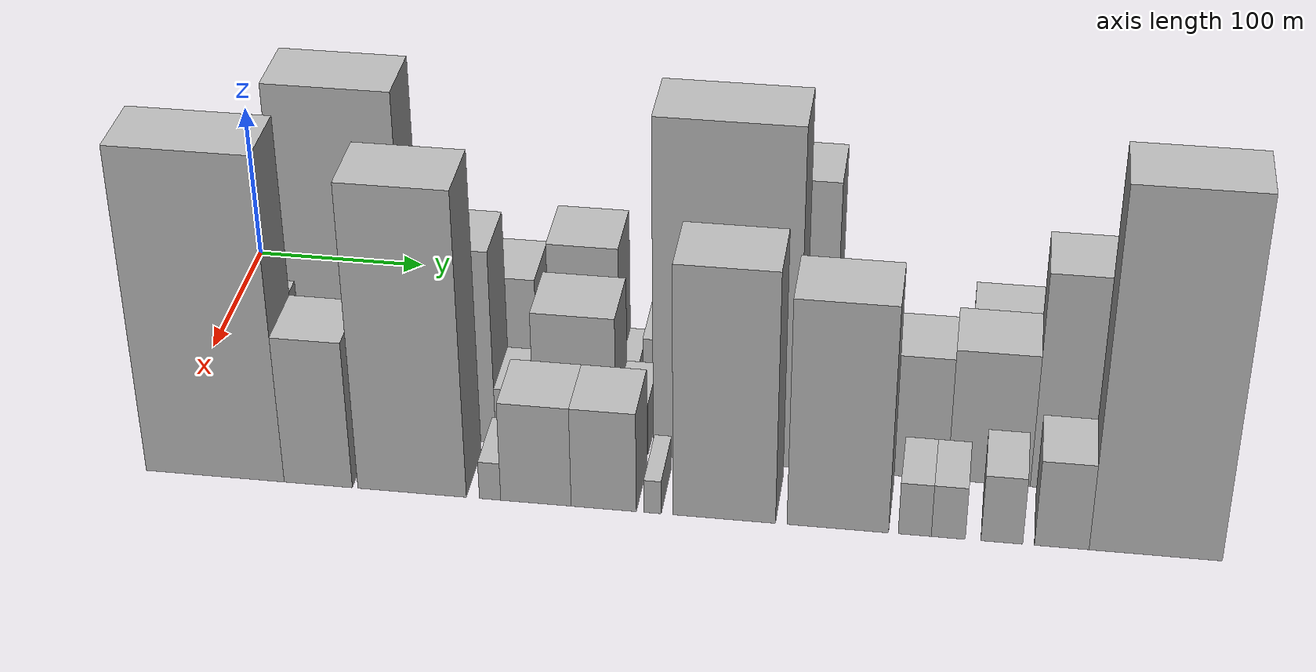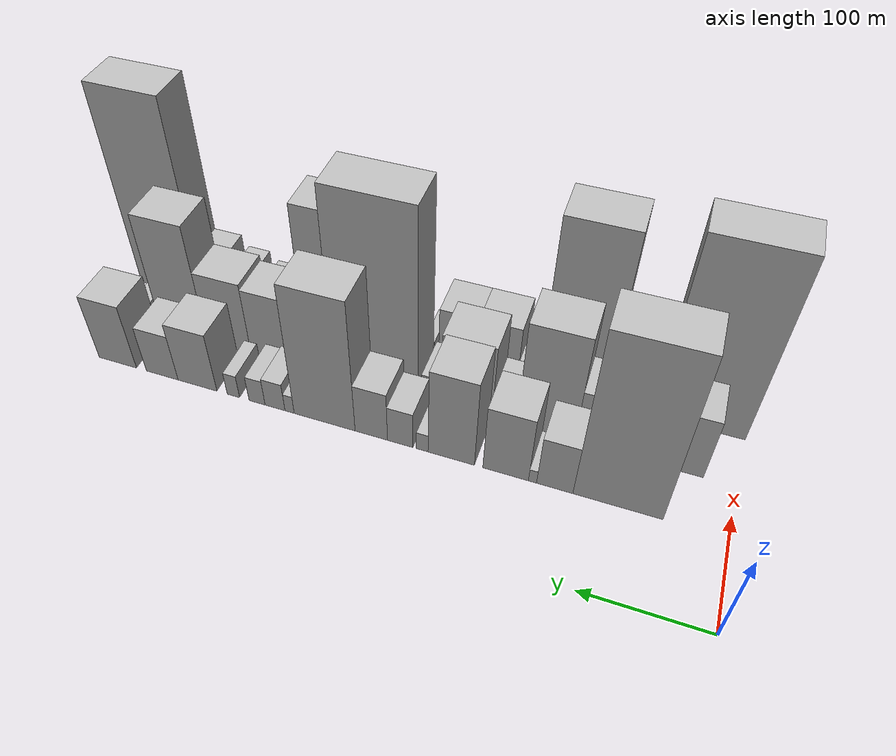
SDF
<sdf version="1.6">
 <world name="default">
  <model name="building_16">
   <static>1</static>
   <pose>100.0000 84.3406 0 0.000000 0.000000 0.000000</pose>
   <link name="link">
    <pose>0 0 93.00 0 0 0</pose>
    <collision name="collision"><geometry><box><size>40.0000 70.0272 186.0000</size></box></geometry></collision>
    <visual name="visual">
     <cast_shadows>0</cast_shadows>
     <geometry><box><size>40.0000 70.0272 186.0000</size></box></geometry>
     <material>
      <script>
       <uri>model://HANNAS_wall/materials/scripts</uri>
       <uri>model://HANNAS_wall/materials/textures</uri>
       <name>vrc/HANNAS_wall</name>
      </script>
     </material>
    </visual>
   </link>
  </model>
  <model name="building_17">
   <static>1</static>
   <pose>100.0000 133.8959 0 0.000000 0.000000 0.000000</pose>
   <link name="link">
    <pose>0 0 28.50 0 0 0</pose>
    <collision name="collision"><geometry><box><size>40.0000 29.0835 57.0000</size></box></geometry></collision>
    <visual name="visual">
     <cast_shadows>0</cast_shadows>
     <geometry><box><size>40.0000 29.0835 57.0000</size></box></geometry>
     <material>
      <script>
       <uri>model://HANNAS_wall/materials/scripts</uri>
       <uri>model://HANNAS_wall/materials/textures</uri>
       <name>vrc/HANNAS_wall</name>
      </script>
     </material>
    </visual>
   </link>
  </model>
  <model name="building_18">
   <static>1</static>
   <pose>100.0000 151.7411 0 0.000000 0.000000 0.000000</pose>
   <link name="link">
    <pose>0 0 7.50 0 0 0</pose>
    <collision name="collision"><geometry><box><size>40.0000 6.6067 15.0000</size></box></geometry></collision>
    <visual name="visual">
     <cast_shadows>0</cast_shadows>
     <geometry><box><size>40.0000 6.6067 15.0000</size></box></geometry>
     <material>
      <script>
       <uri>model://HANNAS_wall/materials/scripts</uri>
       <uri>model://HANNAS_wall/materials/textures</uri>
       <name>vrc/HANNAS_wall</name>
      </script>
     </material>
    </visual>
   </link>
  </model>
  <model name="building_19">
   <static>1</static>
   <pose>100.0000 173.7985 0 0.000000 0.000000 0.000000</pose>
   <link name="link">
    <pose>0 0 37.50 0 0 0</pose>
    <collision name="collision"><geometry><box><size>40.0000 37.5081 75.0000</size></box></geometry></collision>
    <visual name="visual">
     <cast_shadows>0</cast_shadows>
     <geometry><box><size>40.0000 37.5081 75.0000</size></box></geometry>
     <material>
      <script>
       <uri>model://HANNAS_wall/materials/scripts</uri>
       <uri>model://HANNAS_wall/materials/textures</uri>
       <name>vrc/HANNAS_wall</name>
      </script>
     </material>
    </visual>
   </link>
  </model>
  <model name="building_20">
   <static>1</static>
   <pose>100.0000 219.1859 0 0.000000 0.000000 0.000000</pose>
   <link name="link">
    <pose>0 0 49.50 0 0 0</pose>
    <collision name="collision"><geometry><box><size>40.0000 39.2666 99.0000</size></box></geometry></collision>
    <visual name="visual">
     <cast_shadows>0</cast_shadows>
     <geometry><box><size>40.0000 39.2666 99.0000</size></box></geometry>
     <material>
      <script>
       <uri>model://HANNAS_wall/materials/scripts</uri>
       <uri>model://HANNAS_wall/materials/textures</uri>
       <name>vrc/HANNAS_wall</name>
      </script>
     </material>
    </visual>
   </link>
  </model>
  <model name="building_21">
   <static>1</static>
   <pose>100.0000 243.8342 0 0.000000 0.000000 0.000000</pose>
   <link name="link">
    <pose>0 0 10.50 0 0 0</pose>
    <collision name="collision"><geometry><box><size>40.0000 10.0301 21.0000</size></box></geometry></collision>
    <visual name="visual">
     <cast_shadows>0</cast_shadows>
     <geometry><box><size>40.0000 10.0301 21.0000</size></box></geometry>
     <material>
      <script>
       <uri>model://HANNAS_wall/materials/scripts</uri>
       <uri>model://HANNAS_wall/materials/textures</uri>
       <name>vrc/HANNAS_wall</name>
      </script>
     </material>
    </visual>
   </link>
  </model>
  <model name="building_22">
   <static>1</static>
   <pose>100.0000 262.9086 0 0.000000 0.000000 0.000000</pose>
   <link name="link">
    <pose>0 0 21.00 0 0 0</pose>
    <collision name="collision"><geometry><box><size>40.0000 22.1185 42.0000</size></box></geometry></collision>
    <visual name="visual">
     <cast_shadows>0</cast_shadows>
     <geometry><box><size>40.0000 22.1185 42.0000</size></box></geometry>
     <material>
      <script>
       <uri>model://HANNAS_wall/materials/scripts</uri>
       <uri>model://HANNAS_wall/materials/textures</uri>
       <name>vrc/HANNAS_wall</name>
      </script>
     </material>
    </visual>
   </link>
  </model>
  <model name="building_23">
   <static>1</static>
   <pose>100.0000 288.2945 0 0.000000 0.000000 0.000000</pose>
   <link name="link">
    <pose>0 0 28.50 0 0 0</pose>
    <collision name="collision"><geometry><box><size>40.0000 28.6533 57.0000</size></box></geometry></collision>
    <visual name="visual">
     <cast_shadows>0</cast_shadows>
     <geometry><box><size>40.0000 28.6533 57.0000</size></box></geometry>
     <material>
      <script>
       <uri>model://HANNAS_wall/materials/scripts</uri>
       <uri>model://HANNAS_wall/materials/textures</uri>
       <name>vrc/HANNAS_wall</name>
      </script>
     </material>
    </visual>
   </link>
  </model>
  <model name="building_24">
   <static>1</static>
   <pose>100.0000 330.2914 0 0.000000 0.000000 0.000000</pose>
   <link name="link">
    <pose>0 0 75.00 0 0 0</pose>
    <collision name="collision"><geometry><box><size>40.0000 55.3407 150.0000</size></box></geometry></collision>
    <visual name="visual">
     <cast_shadows>0</cast_shadows>
     <geometry><box><size>40.0000 55.3407 150.0000</size></box></geometry>
     <material>
      <script>
       <uri>model://HANNAS_wall/materials/scripts</uri>
       <uri>model://HANNAS_wall/materials/textures</uri>
       <name>vrc/HANNAS_wall</name>
      </script>
     </material>
    </visual>
   </link>
  </model>
  <model name="building_25">
   <static>1</static>
   <pose>100.0000 362.2287 0 0.000000 0.000000 0.000000</pose>
   <link name="link">
    <pose>0 0 10.50 0 0 0</pose>
    <collision name="collision"><geometry><box><size>40.0000 8.5337 21.0000</size></box></geometry></collision>
    <visual name="visual">
     <cast_shadows>0</cast_shadows>
     <geometry><box><size>40.0000 8.5337 21.0000</size></box></geometry>
     <material>
      <script>
       <uri>model://HANNAS_wall/materials/scripts</uri>
       <uri>model://HANNAS_wall/materials/textures</uri>
       <name>vrc/HANNAS_wall</name>
      </script>
     </material>
    </visual>
   </link>
  </model>
  <model name="building_26">
   <static>1</static>
   <pose>100.0000 375.7533 0 0.000000 0.000000 0.000000</pose>
   <link name="link">
    <pose>0 0 16.50 0 0 0</pose>
    <collision name="collision"><geometry><box><size>40.0000 18.5155 33.0000</size></box></geometry></collision>
    <visual name="visual">
     <cast_shadows>0</cast_shadows>
     <geometry><box><size>40.0000 18.5155 33.0000</size></box></geometry>
     <material>
      <script>
       <uri>model://HANNAS_wall/materials/scripts</uri>
       <uri>model://HANNAS_wall/materials/textures</uri>
       <name>vrc/HANNAS_wall</name>
      </script>
     </material>
    </visual>
   </link>
  </model>
  <model name="building_27">
   <static>1</static>
   <pose>100.0000 392.5887 0 0.000000 0.000000 0.000000</pose>
   <link name="link">
    <pose>0 0 15.00 0 0 0</pose>
    <collision name="collision"><geometry><box><size>40.0000 15.1554 30.0000</size></box></geometry></collision>
    <visual name="visual">
     <cast_shadows>0</cast_shadows>
     <geometry><box><size>40.0000 15.1554 30.0000</size></box></geometry>
     <material>
      <script>
       <uri>model://HANNAS_wall/materials/scripts</uri>
       <uri>model://HANNAS_wall/materials/textures</uri>
       <name>vrc/HANNAS_wall</name>
      </script>
     </material>
    </visual>
   </link>
  </model>
  <model name="building_28">
   <static>1</static>
   <pose>100.0000 415.0585 0 0.000000 0.000000 0.000000</pose>
   <link name="link">
    <pose>0 0 13.50 0 0 0</pose>
    <collision name="collision"><geometry><box><size>40.0000 11.7842 27.0000</size></box></geometry></collision>
    <visual name="visual">
     <cast_shadows>0</cast_shadows>
     <geometry><box><size>40.0000 11.7842 27.0000</size></box></geometry>
     <material>
      <script>
       <uri>model://HANNAS_wall/materials/scripts</uri>
       <uri>model://HANNAS_wall/materials/textures</uri>
       <name>vrc/HANNAS_wall</name>
      </script>
     </material>
    </visual>
   </link>
  </model>
  <model name="building_29">
   <static>1</static>
   <pose>100.0000 449.8755 0 0.000000 0.000000 0.000000</pose>
   <link name="link">
    <pose>0 0 34.50 0 0 0</pose>
    <collision name="collision"><geometry><box><size>40.0000 37.8498 69.0000</size></box></geometry></collision>
    <visual name="visual">
     <cast_shadows>0</cast_shadows>
     <geometry><box><size>40.0000 37.8498 69.0000</size></box></geometry>
     <material>
      <script>
       <uri>model://HANNAS_wall/materials/scripts</uri>
       <uri>model://HANNAS_wall/materials/textures</uri>
       <name>vrc/HANNAS_wall</name>
      </script>
     </material>
    </visual>
   </link>
  </model>
  <model name="building_30">
   <static>1</static>
   <pose>100.0000 484.6062 0 0.000000 0.000000 0.000000</pose>
   <link name="link">
    <pose>0 0 27.00 0 0 0</pose>
    <collision name="collision"><geometry><box><size>40.0000 31.6116 54.0000</size></box></geometry></collision>
    <visual name="visual">
     <cast_shadows>0</cast_shadows>
     <geometry><box><size>40.0000 31.6116 54.0000</size></box></geometry>
     <material>
      <script>
       <uri>model://HANNAS_wall/materials/scripts</uri>
       <uri>model://HANNAS_wall/materials/textures</uri>
       <name>vrc/HANNAS_wall</name>
      </script>
     </material>
    </visual>
   </link>
  </model>
  <model name="building_31">
   <static>1</static>
   <pose>100.0000 529.4154 0 0.000000 0.000000 0.000000</pose>
   <link name="link">
    <pose>0 0 37.50 0 0 0</pose>
    <collision name="collision"><geometry><box><size>40.0000 38.0069 75.0000</size></box></geometry></collision>
    <visual name="visual">
     <cast_shadows>0</cast_shadows>
     <geometry><box><size>40.0000 38.0069 75.0000</size></box></geometry>
     <material>
      <script>
       <uri>model://HANNAS_wall/materials/scripts</uri>
       <uri>model://HANNAS_wall/materials/textures</uri>
       <name>vrc/HANNAS_wall</name>
      </script>
     </material>
    </visual>
   </link>
  </model>
  <model name="building_47">
   <static>1</static>
   <pose>149.0000 43.0082 0 0.000000 0.000000 0.000000</pose>
   <link name="link">
    <pose>0 0 34.50 0 0 0</pose>
    <collision name="collision"><geometry><box><size>40.0000 35.7730 69.0000</size></box></geometry></collision>
    <visual name="visual">
     <cast_shadows>0</cast_shadows>
     <geometry><box><size>40.0000 35.7730 69.0000</size></box></geometry>
     <material>
      <script>
       <uri>model://HANNAS_wall/materials/scripts</uri>
       <uri>model://HANNAS_wall/materials/textures</uri>
       <name>vrc/HANNAS_wall</name>
      </script>
     </material>
    </visual>
   </link>
  </model>
  <model name="building_48">
   <static>1</static>
   <pose>149.0000 79.2917 0 0.000000 0.000000 0.000000</pose>
   <link name="link">
    <pose>0 0 21.00 0 0 0</pose>
    <collision name="collision"><geometry><box><size>40.0000 22.7939 42.0000</size></box></geometry></collision>
    <visual name="visual">
     <cast_shadows>0</cast_shadows>
     <geometry><box><size>40.0000 22.7939 42.0000</size></box></geometry>
     <material>
      <script>
       <uri>model://HANNAS_wall/materials/scripts</uri>
       <uri>model://HANNAS_wall/materials/textures</uri>
       <name>vrc/HANNAS_wall</name>
      </script>
     </material>
    </visual>
   </link>
  </model>
  <model name="building_49">
   <static>1</static>
   <pose>149.0000 112.8790 0 0.000000 0.000000 0.000000</pose>
   <link name="link">
    <pose>0 0 31.50 0 0 0</pose>
    <collision name="collision"><geometry><box><size>40.0000 32.3808 63.0000</size></box></geometry></collision>
    <visual name="visual">
     <cast_shadows>0</cast_shadows>
     <geometry><box><size>40.0000 32.3808 63.0000</size></box></geometry>
     <material>
      <script>
       <uri>model://HANNAS_wall/materials/scripts</uri>
       <uri>model://HANNAS_wall/materials/textures</uri>
       <name>vrc/HANNAS_wall</name>
      </script>
     </material>
    </visual>
   </link>
  </model>
  <model name="building_50">
   <static>1</static>
   <pose>149.0000 153.6038 0 0.000000 0.000000 0.000000</pose>
   <link name="link">
    <pose>0 0 61.50 0 0 0</pose>
    <collision name="collision"><geometry><box><size>40.0000 49.0689 123.0000</size></box></geometry></collision>
    <visual name="visual">
     <cast_shadows>0</cast_shadows>
     <geometry><box><size>40.0000 49.0689 123.0000</size></box></geometry>
     <material>
      <script>
       <uri>model://HANNAS_wall/materials/scripts</uri>
       <uri>model://HANNAS_wall/materials/textures</uri>
       <name>vrc/HANNAS_wall</name>
      </script>
     </material>
    </visual>
   </link>
  </model>
  <model name="building_51">
   <static>1</static>
   <pose>149.0000 188.7272 0 0.000000 0.000000 0.000000</pose>
   <link name="link">
    <pose>0 0 18.00 0 0 0</pose>
    <collision name="collision"><geometry><box><size>40.0000 21.1778 36.0000</size></box></geometry></collision>
    <visual name="visual">
     <cast_shadows>0</cast_shadows>
     <geometry><box><size>40.0000 21.1778 36.0000</size></box></geometry>
     <material>
      <script>
       <uri>model://HANNAS_wall/materials/scripts</uri>
       <uri>model://HANNAS_wall/materials/textures</uri>
       <name>vrc/HANNAS_wall</name>
      </script>
     </material>
    </visual>
   </link>
  </model>
  <model name="building_52">
   <static>1</static>
   <pose>149.0000 221.8408 0 0.000000 0.000000 0.000000</pose>
   <link name="link">
    <pose>0 0 43.50 0 0 0</pose>
    <collision name="collision"><geometry><box><size>40.0000 45.0494 87.0000</size></box></geometry></collision>
    <visual name="visual">
     <cast_shadows>0</cast_shadows>
     <geometry><box><size>40.0000 45.0494 87.0000</size></box></geometry>
     <material>
      <script>
       <uri>model://HANNAS_wall/materials/scripts</uri>
       <uri>model://HANNAS_wall/materials/textures</uri>
       <name>vrc/HANNAS_wall</name>
      </script>
     </material>
    </visual>
   </link>
  </model>
  <model name="building_53">
   <static>1</static>
   <pose>149.0000 252.9647 0 0.000000 0.000000 0.000000</pose>
   <link name="link">
    <pose>0 0 16.50 0 0 0</pose>
    <collision name="collision"><geometry><box><size>40.0000 17.1985 33.0000</size></box></geometry></collision>
    <visual name="visual">
     <cast_shadows>0</cast_shadows>
     <geometry><box><size>40.0000 17.1985 33.0000</size></box></geometry>
     <material>
      <script>
       <uri>model://HANNAS_wall/materials/scripts</uri>
       <uri>model://HANNAS_wall/materials/textures</uri>
       <name>vrc/HANNAS_wall</name>
      </script>
     </material>
    </visual>
   </link>
  </model>
  <model name="building_54">
   <static>1</static>
   <pose>149.0000 303.4905 0 0.000000 0.000000 0.000000</pose>
   <link name="link">
    <pose>0 0 105.00 0 0 0</pose>
    <collision name="collision"><geometry><box><size>40.0000 77.8529 210.0000</size></box></geometry></collision>
    <visual name="visual">
     <cast_shadows>0</cast_shadows>
     <geometry><box><size>40.0000 77.8529 210.0000</size></box></geometry>
     <material>
      <script>
       <uri>model://HANNAS_wall/materials/scripts</uri>
       <uri>model://HANNAS_wall/materials/textures</uri>
       <name>vrc/HANNAS_wall</name>
      </script>
     </material>
    </visual>
   </link>
  </model>
  <model name="building_55">
   <static>1</static>
   <pose>149.0000 359.7957 0 0.000000 0.000000 0.000000</pose>
   <link name="link">
    <pose>0 0 33.00 0 0 0</pose>
    <collision name="collision"><geometry><box><size>40.0000 34.7575 66.0000</size></box></geometry></collision>
    <visual name="visual">
     <cast_shadows>0</cast_shadows>
     <geometry><box><size>40.0000 34.7575 66.0000</size></box></geometry>
     <material>
      <script>
       <uri>model://HANNAS_wall/materials/scripts</uri>
       <uri>model://HANNAS_wall/materials/textures</uri>
       <name>vrc/HANNAS_wall</name>
      </script>
     </material>
    </visual>
   </link>
  </model>
  <model name="building_56">
   <static>1</static>
   <pose>149.0000 402.5423 0 0.000000 0.000000 0.000000</pose>
   <link name="link">
    <pose>0 0 39.00 0 0 0</pose>
    <collision name="collision"><geometry><box><size>40.0000 40.7358 78.0000</size></box></geometry></collision>
    <visual name="visual">
     <cast_shadows>0</cast_shadows>
     <geometry><box><size>40.0000 40.7358 78.0000</size></box></geometry>
     <material>
      <script>
       <uri>model://HANNAS_wall/materials/scripts</uri>
       <uri>model://HANNAS_wall/materials/textures</uri>
       <name>vrc/HANNAS_wall</name>
      </script>
     </material>
    </visual>
   </link>
  </model>
  <model name="building_57">
   <static>1</static>
   <pose>149.0000 444.7570 0 0.000000 0.000000 0.000000</pose>
   <link name="link">
    <pose>0 0 42.00 0 0 0</pose>
    <collision name="collision"><geometry><box><size>40.0000 43.6936 84.0000</size></box></geometry></collision>
    <visual name="visual">
     <cast_shadows>0</cast_shadows>
     <geometry><box><size>40.0000 43.6936 84.0000</size></box></geometry>
     <material>
      <script>
       <uri>model://HANNAS_wall/materials/scripts</uri>
       <uri>model://HANNAS_wall/materials/textures</uri>
       <name>vrc/HANNAS_wall</name>
      </script>
     </material>
    </visual>
   </link>
  </model>
  <model name="building_58">
   <static>1</static>
   <pose>149.0000 490.4272 0 0.000000 0.000000 0.000000</pose>
   <link name="link">
    <pose>0 0 67.50 0 0 0</pose>
    <collision name="collision"><geometry><box><size>40.0000 47.6468 135.0000</size></box></geometry></collision>
    <visual name="visual">
     <cast_shadows>0</cast_shadows>
     <geometry><box><size>40.0000 47.6468 135.0000</size></box></geometry>
     <material>
      <script>
       <uri>model://HANNAS_wall/materials/scripts</uri>
       <uri>model://HANNAS_wall/materials/textures</uri>
       <name>vrc/HANNAS_wall</name>
      </script>
     </material>
    </visual>
   </link>
  </model>
  <model name="building_59">
   <static>1</static>
   <pose>149.0000 528.4478 0 0.000000 0.000000 0.000000</pose>
   <link name="link">
    <pose>0 0 15.00 0 0 0</pose>
    <collision name="collision"><geometry><box><size>40.0000 16.3944 30.0000</size></box></geometry></collision>
    <visual name="visual">
     <cast_shadows>0</cast_shadows>
     <geometry><box><size>40.0000 16.3944 30.0000</size></box></geometry>
     <material>
      <script>
       <uri>model://HANNAS_wall/materials/scripts</uri>
       <uri>model://HANNAS_wall/materials/textures</uri>
       <name>vrc/HANNAS_wall</name>
      </script>
     </material>
    </visual>
   </link>
  </model>
  <model name="building_73">
   <static>1</static>
   <pose>198.0000 35.1176 0 0.000000 0.000000 0.000000</pose>
   <link name="link">
    <pose>0 0 100.50 0 0 0</pose>
    <collision name="collision"><geometry><box><size>40.0000 75.8104 201.0000</size></box></geometry></collision>
    <visual name="visual">
     <cast_shadows>0</cast_shadows>
     <geometry><box><size>40.0000 75.8104 201.0000</size></box></geometry>
     <material>
      <script>
       <uri>model://HANNAS_wall/materials/scripts</uri>
       <uri>model://HANNAS_wall/materials/textures</uri>
       <name>vrc/HANNAS_wall</name>
      </script>
     </material>
    </visual>
   </link>
  </model>
  <model name="building_74">
   <static>1</static>
   <pose>198.0000 91.5755 0 0.000000 0.000000 0.000000</pose>
   <link name="link">
    <pose>0 0 46.50 0 0 0</pose>
    <collision name="collision"><geometry><box><size>40.0000 37.1055 93.0000</size></box></geometry></collision>
    <visual name="visual">
     <cast_shadows>0</cast_shadows>
     <geometry><box><size>40.0000 37.1055 93.0000</size></box></geometry>
     <material>
      <script>
       <uri>model://HANNAS_wall/materials/scripts</uri>
       <uri>model://HANNAS_wall/materials/textures</uri>
       <name>vrc/HANNAS_wall</name>
      </script>
     </material>
    </visual>
   </link>
  </model>
  <model name="building_75">
   <static>1</static>
   <pose>198.0000 142.4606 0 0.000000 0.000000 0.000000</pose>
   <link name="link">
    <pose>0 0 94.50 0 0 0</pose>
    <collision name="collision"><geometry><box><size>40.0000 58.6647 189.0000</size></box></geometry></collision>
    <visual name="visual">
     <cast_shadows>0</cast_shadows>
     <geometry><box><size>40.0000 58.6647 189.0000</size></box></geometry>
     <material>
      <script>
       <uri>model://HANNAS_wall/materials/scripts</uri>
       <uri>model://HANNAS_wall/materials/textures</uri>
       <name>vrc/HANNAS_wall</name>
      </script>
     </material>
    </visual>
   </link>
  </model>
  <model name="building_76">
   <static>1</static>
   <pose>198.0000 184.5098 0 0.000000 0.000000 0.000000</pose>
   <link name="link">
    <pose>0 0 12.00 0 0 0</pose>
    <collision name="collision"><geometry><box><size>40.0000 11.4339 24.0000</size></box></geometry></collision>
    <visual name="visual">
     <cast_shadows>0</cast_shadows>
     <geometry><box><size>40.0000 11.4339 24.0000</size></box></geometry>
     <material>
      <script>
       <uri>model://HANNAS_wall/materials/scripts</uri>
       <uri>model://HANNAS_wall/materials/textures</uri>
       <name>vrc/HANNAS_wall</name>
      </script>
     </material>
    </visual>
   </link>
  </model>
  <model name="building_77">
   <static>1</static>
   <pose>198.0000 209.0477 0 0.000000 0.000000 0.000000</pose>
   <link name="link">
    <pose>0 0 31.50 0 0 0</pose>
    <collision name="collision"><geometry><box><size>40.0000 37.6418 63.0000</size></box></geometry></collision>
    <visual name="visual">
     <cast_shadows>0</cast_shadows>
     <geometry><box><size>40.0000 37.6418 63.0000</size></box></geometry>
     <material>
      <script>
       <uri>model://HANNAS_wall/materials/scripts</uri>
       <uri>model://HANNAS_wall/materials/textures</uri>
       <name>vrc/HANNAS_wall</name>
      </script>
     </material>
    </visual>
   </link>
  </model>
  <model name="building_78">
   <static>1</static>
   <pose>198.0000 245.2040 0 0.000000 0.000000 0.000000</pose>
   <link name="link">
    <pose>0 0 31.50 0 0 0</pose>
    <collision name="collision"><geometry><box><size>40.0000 34.6708 63.0000</size></box></geometry></collision>
    <visual name="visual">
     <cast_shadows>0</cast_shadows>
     <geometry><box><size>40.0000 34.6708 63.0000</size></box></geometry>
     <material>
      <script>
       <uri>model://HANNAS_wall/materials/scripts</uri>
       <uri>model://HANNAS_wall/materials/textures</uri>
       <name>vrc/HANNAS_wall</name>
      </script>
     </material>
    </visual>
   </link>
  </model>
  <model name="building_79">
   <static>1</static>
   <pose>198.0000 271.1131 0 0.000000 0.000000 0.000000</pose>
   <link name="link">
    <pose>0 0 10.50 0 0 0</pose>
    <collision name="collision"><geometry><box><size>40.0000 9.1474 21.0000</size></box></geometry></collision>
    <visual name="visual">
     <cast_shadows>0</cast_shadows>
     <geometry><box><size>40.0000 9.1474 21.0000</size></box></geometry>
     <material>
      <script>
       <uri>model://HANNAS_wall/materials/scripts</uri>
       <uri>model://HANNAS_wall/materials/textures</uri>
       <name>vrc/HANNAS_wall</name>
      </script>
     </material>
    </visual>
   </link>
  </model>
  <model name="building_80">
   <static>1</static>
   <pose>198.0000 308.7291 0 0.000000 0.000000 0.000000</pose>
   <link name="link">
    <pose>0 0 78.00 0 0 0</pose>
    <collision name="collision"><geometry><box><size>40.0000 54.0847 156.0000</size></box></geometry></collision>
    <visual name="visual">
     <cast_shadows>0</cast_shadows>
     <geometry><box><size>40.0000 54.0847 156.0000</size></box></geometry>
     <material>
      <script>
       <uri>model://HANNAS_wall/materials/scripts</uri>
       <uri>model://HANNAS_wall/materials/textures</uri>
       <name>vrc/HANNAS_wall</name>
      </script>
     </material>
    </visual>
   </link>
  </model>
  <model name="building_81">
   <static>1</static>
   <pose>198.0000 368.2148 0 0.000000 0.000000 0.000000</pose>
   <link name="link">
    <pose>0 0 70.50 0 0 0</pose>
    <collision name="collision"><geometry><box><size>40.0000 52.8867 141.0000</size></box></geometry></collision>
    <visual name="visual">
     <cast_shadows>0</cast_shadows>
     <geometry><box><size>40.0000 52.8867 141.0000</size></box></geometry>
     <material>
      <script>
       <uri>model://HANNAS_wall/materials/scripts</uri>
       <uri>model://HANNAS_wall/materials/textures</uri>
       <name>vrc/HANNAS_wall</name>
      </script>
     </material>
    </visual>
   </link>
  </model>
  <model name="building_82">
   <static>1</static>
   <pose>198.0000 408.1956 0 0.000000 0.000000 0.000000</pose>
   <link name="link">
    <pose>0 0 16.50 0 0 0</pose>
    <collision name="collision"><geometry><box><size>40.0000 17.0749 33.0000</size></box></geometry></collision>
    <visual name="visual">
     <cast_shadows>0</cast_shadows>
     <geometry><box><size>40.0000 17.0749 33.0000</size></box></geometry>
     <material>
      <script>
       <uri>model://HANNAS_wall/materials/scripts</uri>
       <uri>model://HANNAS_wall/materials/textures</uri>
       <name>vrc/HANNAS_wall</name>
      </script>
     </material>
    </visual>
   </link>
  </model>
  <model name="building_83">
   <static>1</static>
   <pose>198.0000 425.5143 0 0.000000 0.000000 0.000000</pose>
   <link name="link">
    <pose>0 0 16.50 0 0 0</pose>
    <collision name="collision"><geometry><box><size>40.0000 17.5624 33.0000</size></box></geometry></collision>
    <visual name="visual">
     <cast_shadows>0</cast_shadows>
     <geometry><box><size>40.0000 17.5624 33.0000</size></box></geometry>
     <material>
      <script>
       <uri>model://HANNAS_wall/materials/scripts</uri>
       <uri>model://HANNAS_wall/materials/textures</uri>
       <name>vrc/HANNAS_wall</name>
      </script>
     </material>
    </visual>
   </link>
  </model>
  <model name="building_84">
   <static>1</static>
   <pose>198.0000 453.0336 0 0.000000 0.000000 0.000000</pose>
   <link name="link">
    <pose>0 0 21.00 0 0 0</pose>
    <collision name="collision"><geometry><box><size>40.0000 21.4763 42.0000</size></box></geometry></collision>
    <visual name="visual">
     <cast_shadows>0</cast_shadows>
     <geometry><box><size>40.0000 21.4763 42.0000</size></box></geometry>
     <material>
      <script>
       <uri>model://HANNAS_wall/materials/scripts</uri>
       <uri>model://HANNAS_wall/materials/textures</uri>
       <name>vrc/HANNAS_wall</name>
      </script>
     </material>
    </visual>
   </link>
  </model>
  <model name="building_85">
   <static>1</static>
   <pose>198.0000 483.7143 0 0.000000 0.000000 0.000000</pose>
   <link name="link">
    <pose>0 0 27.00 0 0 0</pose>
    <collision name="collision"><geometry><box><size>40.0000 27.8850 54.0000</size></box></geometry></collision>
    <visual name="visual">
     <cast_shadows>0</cast_shadows>
     <geometry><box><size>40.0000 27.8850 54.0000</size></box></geometry>
     <material>
      <script>
       <uri>model://HANNAS_wall/materials/scripts</uri>
       <uri>model://HANNAS_wall/materials/textures</uri>
       <name>vrc/HANNAS_wall</name>
      </script>
     </material>
    </visual>
   </link>
  </model>
  <model name="building_86">
   <static>1</static>
   <pose>198.0000 531.4115 0 0.000000 0.000000 0.000000</pose>
   <link name="link">
    <pose>0 0 109.50 0 0 0</pose>
    <collision name="collision"><geometry><box><size>40.0000 67.5094 219.0000</size></box></geometry></collision>
    <visual name="visual">
     <cast_shadows>0</cast_shadows>
     <geometry><box><size>40.0000 67.5094 219.0000</size></box></geometry>
     <material>
      <script>
       <uri>model://HANNAS_wall/materials/scripts</uri>
       <uri>model://HANNAS_wall/materials/textures</uri>
       <name>vrc/HANNAS_wall</name>
      </script>
     </material>
    </visual>
   </link>
  </model>
 </world>
</sdf>
